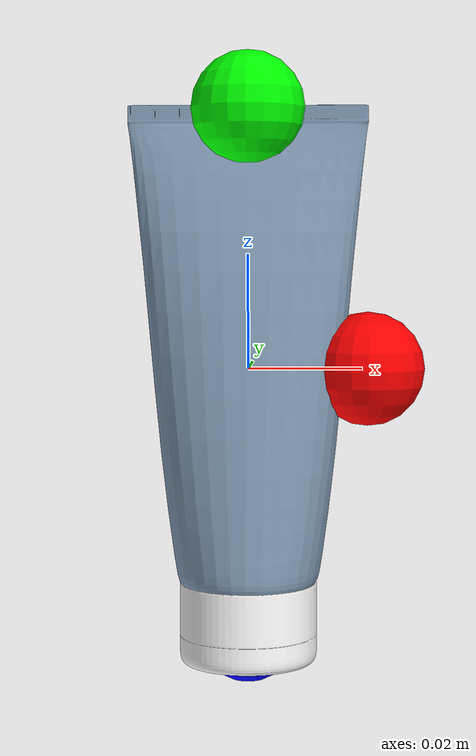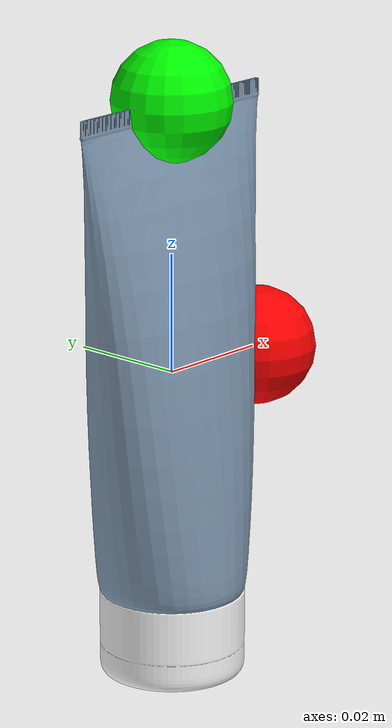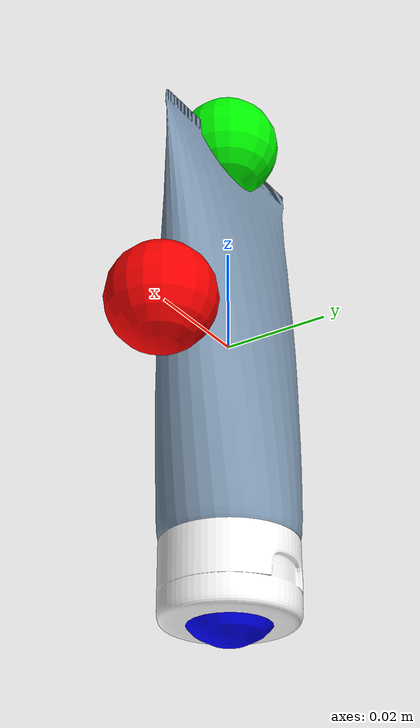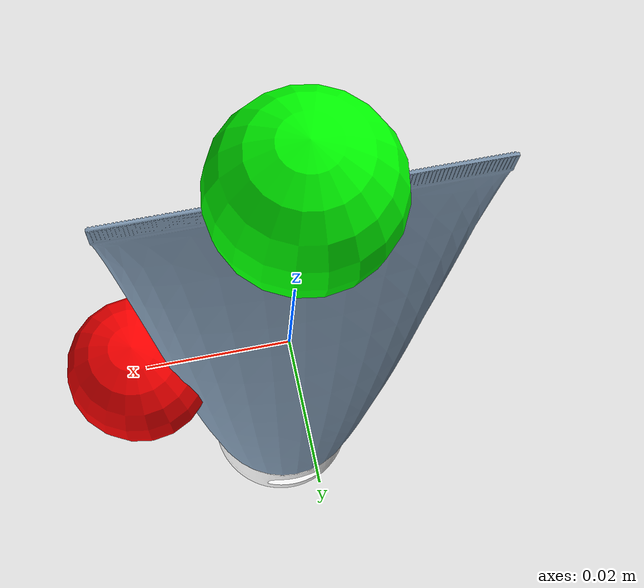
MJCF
<mujoco model="cream_bottle">
    <size njmax="500" nconmax="100" />
    <asset>
      <mesh name="body" file="body.obj" scale="1 1 1" />
      <mesh name="head" file="head.obj" scale="1 1 1" />
    </asset>

  <worldbody>
    <body>
      <body name="object" pos="0 0 0" quat="1 0 0 0">
        <inertial pos="0 0 0" mass="0.5" diaginertia="1e-3 1e-3 1e-3" />

        <geom type="mesh" mesh="body" rgba="0.5 0.6 0.7 1" friction="0.6 0.005 0.001" quat="1 0 0 0" group="1" contype="1" conaffinity="1" pos="0 0 0"/>
        <geom type="mesh" mesh="head" rgba="1 1 1 1" friction="0.6 0.005 0.001" quat="1 0 0 0" group="1" contype="1" conaffinity="1" pos="0 0 0"/>

        <site name="bottle_site" type="box" size="0.02100 0.01220 0.04550" pos="0 0 0" quat="1 0 0 0" rgba="1 0 0 0"/>
        <site name="contact_site" type="box" size="0.02100 0.01220 0.04550" pos="0 0 0" quat="1 0 0 0" rgba="0 0 1 0" group="0"/>
      </body>
      <site rgba="0 0 1 1" size="0.01" pos="0 0 -0.04550" quat="1 0 0 0" name="bottom_site"/>
      <site rgba="0 1 0 1" size="0.01" pos="0 0 0.04550" quat="1 0 0 0" name="top_site"/>
      <site rgba="1 0 0 1" size="0.01" pos="0.02100 0 0" quat="1 0 0 0" name="horizontal_radius_site"/>
    </body>
  </worldbody>
</mujoco>
